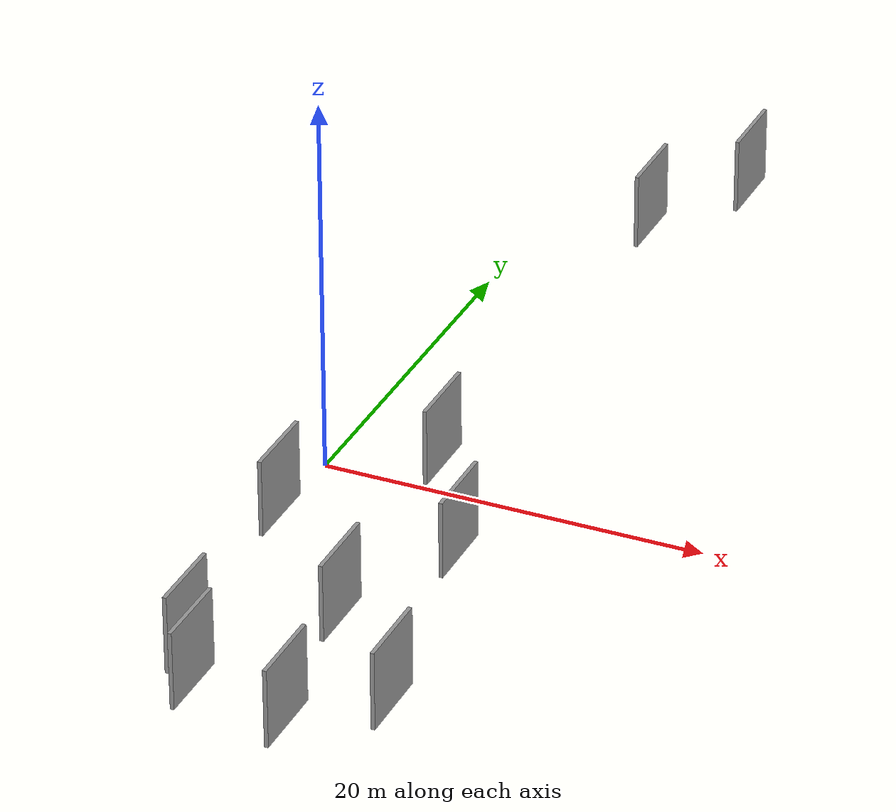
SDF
<sdf version="1.6">
 <world name="default">
  <scene>
   <sky><clouds><speed>12</speed></clouds></sky>
   <ambient>0.4 0.4 0.4 1</ambient>
   <background>0.7 0.7 0.7 1</background>
   <shadows>1</shadows>
  </scene>
  <gravity>0 0 -9.8066</gravity>
  <magnetic_field>6e-06 2.3e-05 -4.2e-05</magnetic_field>
  <physics default="0" name="default_physics" type="ode">
   <ode>
    <solver>
     <type>quick</type>
     <iters>10</iters>
     <sor>1.0</sor>
     <use_dynamic_moi_rescaling>0</use_dynamic_moi_rescaling>
    </solver>
    <constraints>
     <cfm>0</cfm>
     <erp>0.2</erp>
     <contact_max_correcting_vel>100</contact_max_correcting_vel>
     <contact_surface_layer>0.001</contact_surface_layer>
    </constraints>
   </ode>
   <max_step_size>0.004</max_step_size>
   <real_time_factor>1</real_time_factor>
   <real_time_update_rate>250</real_time_update_rate>
  </physics>
  <light name="sun" type="directional">
   <pose>0 0 10 0 0 0</pose>
   <diffuse>0.8 0.8 0.8 1</diffuse>
   <specular>0.2 0.2 0.2 1</specular>
   <attenuation>
    <range>1000</range>
    <constant>0.9</constant>
    <linear>0.01</linear>
    <quadratic>0.001</quadratic>
   </attenuation>
   <direction>-0.5 0.1 -0.9</direction>
  </light>
  <model name="grey_wall_1">
   <static>1</static>
   <pose>6.0714 -26.4300 5.0 0.000000 0.000000 1.570796</pose>
   <link name="link">
    <pose>0 0 2.00 0 0 0</pose>
    <collision name="collision"><geometry><box><size>4.00 0.2 4.00</size></box></geometry></collision>
    <visual name="visual">
     <cast_shadows>0</cast_shadows>
     <geometry><box><size>4.00 0.2 4.00</size></box></geometry>
     <material>
      <script>
       <uri>model://grey_wall/materials/scripts</uri>
       <uri>model://grey_wall/materials/textures</uri>
       <name>vrc/grey_wall</name>
      </script>
     </material>
    </visual>
   </link>
  </model>
  <model name="grey_wall_2">
   <static>1</static>
   <pose>12.5229 -11.9757 5.0 0.000000 0.000000 1.570796</pose>
   <link name="link">
    <pose>0 0 2.00 0 0 0</pose>
    <collision name="collision"><geometry><box><size>4.00 0.2 4.00</size></box></geometry></collision>
    <visual name="visual">
     <cast_shadows>0</cast_shadows>
     <geometry><box><size>4.00 0.2 4.00</size></box></geometry>
     <material>
      <script>
       <uri>model://grey_wall/materials/scripts</uri>
       <uri>model://grey_wall/materials/textures</uri>
       <name>vrc/grey_wall</name>
      </script>
     </material>
    </visual>
   </link>
  </model>
  <model name="grey_wall_3">
   <static>1</static>
   <pose>3.4311 -12.0707 5.0 0.000000 0.000000 1.570796</pose>
   <link name="link">
    <pose>0 0 2.00 0 0 0</pose>
    <collision name="collision"><geometry><box><size>4.00 0.2 4.00</size></box></geometry></collision>
    <visual name="visual">
     <cast_shadows>0</cast_shadows>
     <geometry><box><size>4.00 0.2 4.00</size></box></geometry>
     <material>
      <script>
       <uri>model://grey_wall/materials/scripts</uri>
       <uri>model://grey_wall/materials/textures</uri>
       <name>vrc/grey_wall</name>
      </script>
     </material>
    </visual>
   </link>
  </model>
  <model name="grey_wall_4">
   <static>1</static>
   <pose>4.5847 -23.9891 5.0 0.000000 0.000000 1.570796</pose>
   <link name="link">
    <pose>0 0 2.00 0 0 0</pose>
    <collision name="collision"><geometry><box><size>4.00 0.2 4.00</size></box></geometry></collision>
    <visual name="visual">
     <cast_shadows>0</cast_shadows>
     <geometry><box><size>4.00 0.2 4.00</size></box></geometry>
     <material>
      <script>
       <uri>model://grey_wall/materials/scripts</uri>
       <uri>model://grey_wall/materials/textures</uri>
       <name>vrc/grey_wall</name>
      </script>
     </material>
    </visual>
   </link>
  </model>
  <model name="grey_wall_5">
   <static>1</static>
   <pose>11.1342 -27.3862 5.0 0.000000 0.000000 1.570796</pose>
   <link name="link">
    <pose>0 0 2.00 0 0 0</pose>
    <collision name="collision"><geometry><box><size>4.00 0.2 4.00</size></box></geometry></collision>
    <visual name="visual">
     <cast_shadows>0</cast_shadows>
     <geometry><box><size>4.00 0.2 4.00</size></box></geometry>
     <material>
      <script>
       <uri>model://grey_wall/materials/scripts</uri>
       <uri>model://grey_wall/materials/textures</uri>
       <name>vrc/grey_wall</name>
      </script>
     </material>
    </visual>
   </link>
  </model>
  <model name="grey_wall_6">
   <static>1</static>
   <pose>14.8090 -24.3005 5.0 0.000000 0.000000 1.570796</pose>
   <link name="link">
    <pose>0 0 2.00 0 0 0</pose>
    <collision name="collision"><geometry><box><size>4.00 0.2 4.00</size></box></geometry></collision>
    <visual name="visual">
     <cast_shadows>0</cast_shadows>
     <geometry><box><size>4.00 0.2 4.00</size></box></geometry>
     <material>
      <script>
       <uri>model://grey_wall/materials/scripts</uri>
       <uri>model://grey_wall/materials/textures</uri>
       <name>vrc/grey_wall</name>
      </script>
     </material>
    </visual>
   </link>
  </model>
  <model name="grey_wall_7">
   <static>1</static>
   <pose>9.7774 -18.9054 5.0 0.000000 0.000000 1.570796</pose>
   <link name="link">
    <pose>0 0 2.00 0 0 0</pose>
    <collision name="collision"><geometry><box><size>4.00 0.2 4.00</size></box></geometry></collision>
    <visual name="visual">
     <cast_shadows>0</cast_shadows>
     <geometry><box><size>4.00 0.2 4.00</size></box></geometry>
     <material>
      <script>
       <uri>model://grey_wall/materials/scripts</uri>
       <uri>model://grey_wall/materials/textures</uri>
       <name>vrc/grey_wall</name>
      </script>
     </material>
    </visual>
   </link>
  </model>
  <model name="grey_wall_8">
   <static>1</static>
   <pose>8.9074 20.3314 5.0 0.000000 0.000000 1.570796</pose>
   <link name="link">
    <pose>0 0 2.00 0 0 0</pose>
    <collision name="collision"><geometry><box><size>4.00 0.2 4.00</size></box></geometry></collision>
    <visual name="visual">
     <cast_shadows>0</cast_shadows>
     <geometry><box><size>4.00 0.2 4.00</size></box></geometry>
     <material>
      <script>
       <uri>model://grey_wall/materials/scripts</uri>
       <uri>model://grey_wall/materials/textures</uri>
       <name>vrc/grey_wall</name>
      </script>
     </material>
    </visual>
   </link>
  </model>
  <model name="grey_wall_9">
   <static>1</static>
   <pose>12.1897 25.8985 5.0 0.000000 0.000000 1.570796</pose>
   <link name="link">
    <pose>0 0 2.00 0 0 0</pose>
    <collision name="collision"><geometry><box><size>4.00 0.2 4.00</size></box></geometry></collision>
    <visual name="visual">
     <cast_shadows>0</cast_shadows>
     <geometry><box><size>4.00 0.2 4.00</size></box></geometry>
     <material>
      <script>
       <uri>model://grey_wall/materials/scripts</uri>
       <uri>model://grey_wall/materials/textures</uri>
       <name>vrc/grey_wall</name>
      </script>
     </material>
    </visual>
   </link>
  </model>
  <model name="grey_wall_10">
   <static>1</static>
   <pose>8.5406 -4.9319 5.0 0.000000 0.000000 1.570796</pose>
   <link name="link">
    <pose>0 0 2.00 0 0 0</pose>
    <collision name="collision"><geometry><box><size>4.00 0.2 4.00</size></box></geometry></collision>
    <visual name="visual">
     <cast_shadows>0</cast_shadows>
     <geometry><box><size>4.00 0.2 4.00</size></box></geometry>
     <material>
      <script>
       <uri>model://grey_wall/materials/scripts</uri>
       <uri>model://grey_wall/materials/textures</uri>
       <name>vrc/grey_wall</name>
      </script>
     </material>
    </visual>
   </link>
  </model>
 </world>
</sdf>
